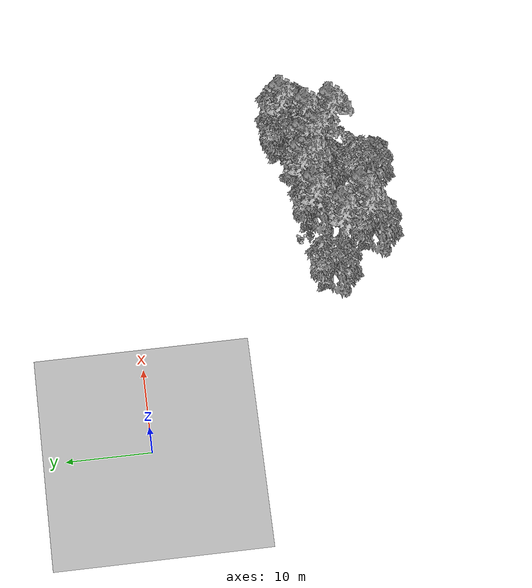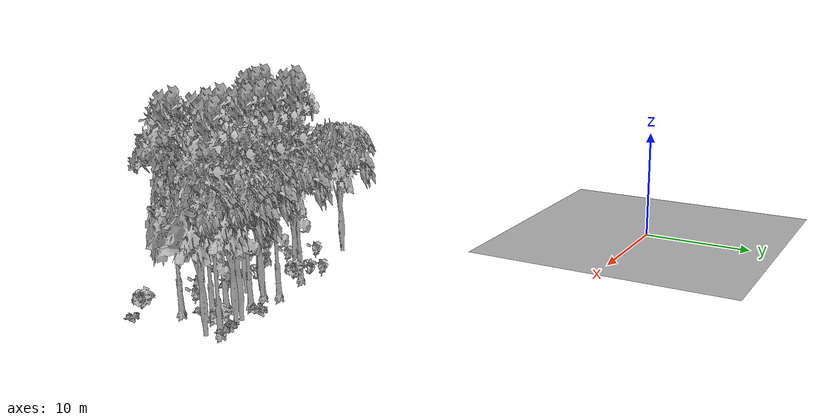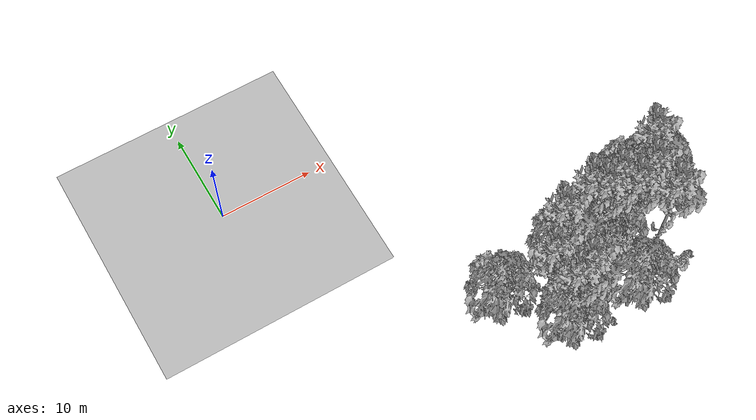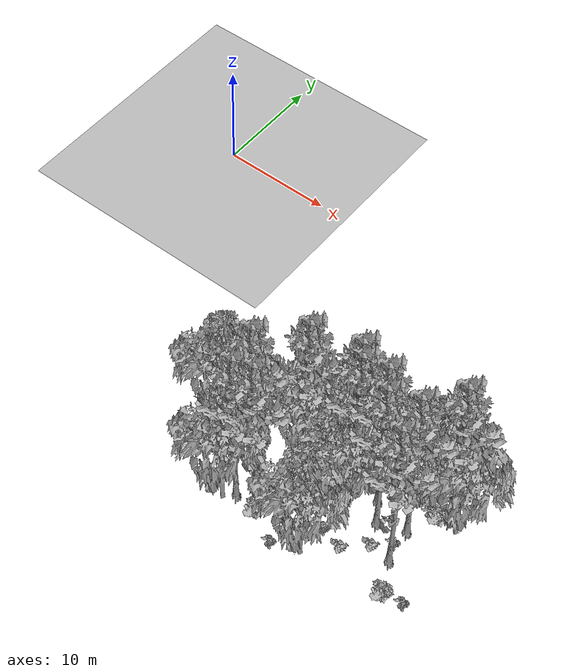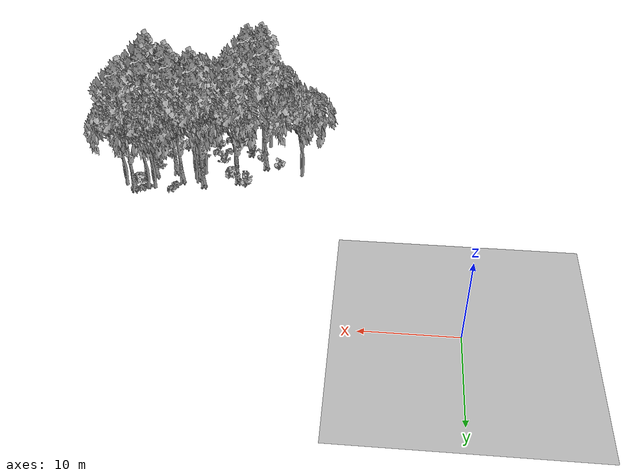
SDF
<sdf version="1.7">
 <world name="default">
  <model name="ground_plane">
   <static>1</static>
   <link name="link">
    <collision name="collision">
     <pose>-50 0 0 0 -0 0</pose>
     <geometry><plane><normal>0 0 1</normal><size>80 80</size></plane></geometry>
     <surface><contact><ode><min_depth>0.01</min_depth><max_vel>0</max_vel></ode></contact></surface>
    </collision>
    <visual name="grass">
     <cast_shadows>0</cast_shadows>
     <geometry>
      <mesh>
       <scale>0.46714285714285714 0.46714285714285714 0.1</scale>
       <uri>file://grass_plane/meshes/grass_plane.dae</uri>
      </mesh>
     </geometry>
    </visual>
   </link>
  </model>
  <model name="Tree 1">
   <static>1</static>
   <pose>25.15433106884627 -22.121792688263522 0 1.57079 -0 0</pose>
   <link name="link">
    <collision name="collision">
     <geometry><mesh><scale>3.5 5 3.5</scale><uri>model://tree_2/meshes/tree_2.obj</uri></mesh></geometry>
    </collision>
    <visual name="visual">
     <geometry><mesh><scale>3.5 5 3.5</scale><uri>model://tree_2/meshes/tree_2.obj</uri></mesh></geometry>
    </visual>
   </link>
  </model>
  <model name="Tree 19">
   <static>1</static>
   <pose>31.57622135617119 -21.32363302971755 0 1.57079 -0 0</pose>
   <link name="link">
    <collision name="collision">
     <geometry><mesh><scale>3.5 5 3.5</scale><uri>model://tree_9/meshes/tree_9.obj</uri></mesh></geometry>
    </collision>
    <visual name="visual">
     <geometry><mesh><scale>3.5 5 3.5</scale><uri>model://tree_9/meshes/tree_9.obj</uri></mesh></geometry>
    </visual>
   </link>
  </model>
  <model name="Tree 50">
   <static>1</static>
   <pose>25.119805464173673 -21.747628831073655 0 1.57079 -0 0</pose>
   <link name="link">
    <collision name="collision">
     <geometry><mesh><scale>3.5 5 3.5</scale><uri>model://tree_9/meshes/tree_9.obj</uri></mesh></geometry>
    </collision>
    <visual name="visual">
     <geometry><mesh><scale>3.5 5 3.5</scale><uri>model://tree_9/meshes/tree_9.obj</uri></mesh></geometry>
    </visual>
   </link>
  </model>
  <model name="Tree 78">
   <static>1</static>
   <pose>29.667019353163383 -21.769724168258982 0 1.57079 -0 0</pose>
   <link name="link">
    <collision name="collision">
     <geometry><mesh><scale>3.5 5 3.5</scale><uri>model://tree_9/meshes/tree_9.obj</uri></mesh></geometry>
    </collision>
    <visual name="visual">
     <geometry><mesh><scale>3.5 5 3.5</scale><uri>model://tree_9/meshes/tree_9.obj</uri></mesh></geometry>
    </visual>
   </link>
  </model>
  <model name="Tree 202">
   <static>1</static>
   <pose>17.6185657190763 -23.146371252627045 0 1.57079 -0 0</pose>
   <link name="link">
    <collision name="collision">
     <geometry><mesh><scale>3.5 5 3.5</scale><uri>model://tree_2/meshes/tree_2.obj</uri></mesh></geometry>
    </collision>
    <visual name="visual">
     <geometry><mesh><scale>3.5 5 3.5</scale><uri>model://tree_2/meshes/tree_2.obj</uri></mesh></geometry>
    </visual>
   </link>
  </model>
  <model name="Tree 309">
   <static>1</static>
   <pose>24.30790081478243 -27.128854217336375 0 1.57079 -0 0</pose>
   <link name="link">
    <collision name="collision">
     <geometry><mesh><scale>3.5 5 3.5</scale><uri>model://tree_9/meshes/tree_9.obj</uri></mesh></geometry>
    </collision>
    <visual name="visual">
     <geometry><mesh><scale>3.5 5 3.5</scale><uri>model://tree_9/meshes/tree_9.obj</uri></mesh></geometry>
    </visual>
   </link>
  </model>
  <model name="Tree 315">
   <static>1</static>
   <pose>22.788136232855635 -27.617628282420725 0 1.57079 -0 0</pose>
   <link name="link">
    <collision name="collision">
     <geometry><mesh><scale>3.5 5 3.5</scale><uri>model://tree_9/meshes/tree_9.obj</uri></mesh></geometry>
    </collision>
    <visual name="visual">
     <geometry><mesh><scale>3.5 5 3.5</scale><uri>model://tree_9/meshes/tree_9.obj</uri></mesh></geometry>
    </visual>
   </link>
  </model>
  <model name="Tree 352">
   <static>1</static>
   <pose>36.78802090127904 -19.372158699724935 0 1.57079 -0 0</pose>
   <link name="link">
    <collision name="collision">
     <geometry><mesh><scale>3.5 5 3.5</scale><uri>model://tree_9/meshes/tree_9.obj</uri></mesh></geometry>
    </collision>
    <visual name="visual">
     <geometry><mesh><scale>3.5 5 3.5</scale><uri>model://tree_9/meshes/tree_9.obj</uri></mesh></geometry>
    </visual>
   </link>
  </model>
  <model name="Tree 356">
   <static>1</static>
   <pose>37.63692072221011 -19.869730244622808 0 1.57079 -0 0</pose>
   <link name="link">
    <collision name="collision">
     <geometry><mesh><scale>3.5 5 3.5</scale><uri>model://tree_2/meshes/tree_2.obj</uri></mesh></geometry>
    </collision>
    <visual name="visual">
     <geometry><mesh><scale>3.5 5 3.5</scale><uri>model://tree_2/meshes/tree_2.obj</uri></mesh></geometry>
    </visual>
   </link>
  </model>
  <model name="Tree 361">
   <static>1</static>
   <pose>32.60873478687947 -22.911637658747537 0 1.57079 -0 0</pose>
   <link name="link">
    <collision name="collision">
     <geometry><mesh><scale>3.5 5 3.5</scale><uri>model://tree_9/meshes/tree_9.obj</uri></mesh></geometry>
    </collision>
    <visual name="visual">
     <geometry><mesh><scale>3.5 5 3.5</scale><uri>model://tree_9/meshes/tree_9.obj</uri></mesh></geometry>
    </visual>
   </link>
  </model>
  <model name="Tree 377">
   <static>1</static>
   <pose>35.00682366378817 -19.45254974841216 0 1.57079 -0 0</pose>
   <link name="link">
    <collision name="collision">
     <geometry><mesh><scale>3.5 5 3.5</scale><uri>model://tree_2/meshes/tree_2.obj</uri></mesh></geometry>
    </collision>
    <visual name="visual">
     <geometry><mesh><scale>3.5 5 3.5</scale><uri>model://tree_2/meshes/tree_2.obj</uri></mesh></geometry>
    </visual>
   </link>
  </model>
  <model name="Tree 405">
   <static>1</static>
   <pose>22.01245626165268 -28.431097696993596 0 1.57079 -0 0</pose>
   <link name="link">
    <collision name="collision">
     <geometry><mesh><scale>3.5 5 3.5</scale><uri>model://tree_2/meshes/tree_2.obj</uri></mesh></geometry>
    </collision>
    <visual name="visual">
     <geometry><mesh><scale>3.5 5 3.5</scale><uri>model://tree_2/meshes/tree_2.obj</uri></mesh></geometry>
    </visual>
   </link>
  </model>
  <model name="Tree 406">
   <static>1</static>
   <pose>28.93105081546682 -22.614852970560648 0 1.57079 -0 0</pose>
   <link name="link">
    <collision name="collision">
     <geometry><mesh><scale>3.5 5 3.5</scale><uri>model://tree_2/meshes/tree_2.obj</uri></mesh></geometry>
    </collision>
    <visual name="visual">
     <geometry><mesh><scale>3.5 5 3.5</scale><uri>model://tree_2/meshes/tree_2.obj</uri></mesh></geometry>
    </visual>
   </link>
  </model>
  <model name="Tree 419">
   <static>1</static>
   <pose>22.162764306087006 -24.66579900304005 0 1.57079 -0 0</pose>
   <link name="link">
    <collision name="collision">
     <geometry><mesh><scale>3.5 5 3.5</scale><uri>model://tree_9/meshes/tree_9.obj</uri></mesh></geometry>
    </collision>
    <visual name="visual">
     <geometry><mesh><scale>3.5 5 3.5</scale><uri>model://tree_9/meshes/tree_9.obj</uri></mesh></geometry>
    </visual>
   </link>
  </model>
  <model name="Tree 426">
   <static>1</static>
   <pose>34.28933614757631 -19.59842076832846 0 1.57079 -0 0</pose>
   <link name="link">
    <collision name="collision">
     <geometry><mesh><scale>3.5 5 3.5</scale><uri>model://tree_2/meshes/tree_2.obj</uri></mesh></geometry>
    </collision>
    <visual name="visual">
     <geometry><mesh><scale>3.5 5 3.5</scale><uri>model://tree_2/meshes/tree_2.obj</uri></mesh></geometry>
    </visual>
   </link>
  </model>
  <model name="Tree 432">
   <static>1</static>
   <pose>34.84116654038324 -22.077814399668565 0 1.57079 -0 0</pose>
   <link name="link">
    <collision name="collision">
     <geometry><mesh><scale>3.5 5 3.5</scale><uri>model://tree_9/meshes/tree_9.obj</uri></mesh></geometry>
    </collision>
    <visual name="visual">
     <geometry><mesh><scale>3.5 5 3.5</scale><uri>model://tree_9/meshes/tree_9.obj</uri></mesh></geometry>
    </visual>
   </link>
  </model>
  <model name="Tree 472">
   <static>1</static>
   <pose>29.550734960092342 -28.54523869502387 0 1.57079 -0 0</pose>
   <link name="link">
    <collision name="collision">
     <geometry><mesh><scale>3.5 5 3.5</scale><uri>model://tree_2/meshes/tree_2.obj</uri></mesh></geometry>
    </collision>
    <visual name="visual">
     <geometry><mesh><scale>3.5 5 3.5</scale><uri>model://tree_2/meshes/tree_2.obj</uri></mesh></geometry>
    </visual>
   </link>
  </model>
  <model name="Tree 547">
   <static>1</static>
   <pose>29.848208594778697 -21.62453468427234 0 1.57079 -0 0</pose>
   <link name="link">
    <collision name="collision">
     <geometry><mesh><scale>3.5 5 3.5</scale><uri>model://tree_2/meshes/tree_2.obj</uri></mesh></geometry>
    </collision>
    <visual name="visual">
     <geometry><mesh><scale>3.5 5 3.5</scale><uri>model://tree_2/meshes/tree_2.obj</uri></mesh></geometry>
    </visual>
   </link>
  </model>
  <model name="Tree 561">
   <static>1</static>
   <pose>29.862461277806574 -23.290935414687787 0 1.57079 -0 0</pose>
   <link name="link">
    <collision name="collision">
     <geometry><mesh><scale>3.5 5 3.5</scale><uri>model://tree_2/meshes/tree_2.obj</uri></mesh></geometry>
    </collision>
    <visual name="visual">
     <geometry><mesh><scale>3.5 5 3.5</scale><uri>model://tree_2/meshes/tree_2.obj</uri></mesh></geometry>
    </visual>
   </link>
  </model>
  <model name="Tree 597">
   <static>1</static>
   <pose>35.25030614659455 -24.96420193860751 0 1.57079 -0 0</pose>
   <link name="link">
    <collision name="collision">
     <geometry><mesh><scale>3.5 5 3.5</scale><uri>model://tree_9/meshes/tree_9.obj</uri></mesh></geometry>
    </collision>
    <visual name="visual">
     <geometry><mesh><scale>3.5 5 3.5</scale><uri>model://tree_9/meshes/tree_9.obj</uri></mesh></geometry>
    </visual>
   </link>
  </model>
  <model name="Tree 599">
   <static>1</static>
   <pose>28.96413450698607 -20.739951017294082 0 1.57079 -0 0</pose>
   <link name="link">
    <collision name="collision">
     <geometry><mesh><scale>3.5 5 3.5</scale><uri>model://tree_9/meshes/tree_9.obj</uri></mesh></geometry>
    </collision>
    <visual name="visual">
     <geometry><mesh><scale>3.5 5 3.5</scale><uri>model://tree_9/meshes/tree_9.obj</uri></mesh></geometry>
    </visual>
   </link>
  </model>
  <model name="Bush 27">
   <static>1</static>
   <pose>24.098547384231978 -21.63351143673396 0 1.57079 -0 0</pose>
   <link name="link">
    <collision name="collision">
     <geometry><mesh><scale>2 2 2</scale><uri>model://bush_4/meshes/bush_4.obj</uri></mesh></geometry>
     <surface><contact><collide_without_contact>false</collide_without_contact></contact></surface>
    </collision>
    <visual name="visual">
     <geometry><mesh><scale>2 2 2</scale><uri>model://bush_4/meshes/bush_4.obj</uri></mesh></geometry>
    </visual>
   </link>
  </model>
  <model name="Bush 44">
   <static>1</static>
   <pose>24.959239774797545 -28.27838011522222 0 1.57079 -0 0</pose>
   <link name="link">
    <collision name="collision">
     <geometry><mesh><scale>2 2 2</scale><uri>model://bush_1/meshes/bush_1.obj</uri></mesh></geometry>
     <surface><contact><collide_without_contact>false</collide_without_contact></contact></surface>
    </collision>
    <visual name="visual">
     <geometry><mesh><scale>2 2 2</scale><uri>model://bush_1/meshes/bush_1.obj</uri></mesh></geometry>
    </visual>
   </link>
  </model>
  <model name="Bush 79">
   <static>1</static>
   <pose>25.72087300759621 -22.060497128843018 0 1.57079 -0 0</pose>
   <link name="link">
    <collision name="collision">
     <geometry><mesh><scale>2 2 2</scale><uri>model://bush_1/meshes/bush_1.obj</uri></mesh></geometry>
     <surface><contact><collide_without_contact>false</collide_without_contact></contact></surface>
    </collision>
    <visual name="visual">
     <geometry><mesh><scale>2 2 2</scale><uri>model://bush_1/meshes/bush_1.obj</uri></mesh></geometry>
    </visual>
   </link>
  </model>
  <model name="Bush 137">
   <static>1</static>
   <pose>24.01012503966912 -26.820329151984204 0 1.57079 -0 0</pose>
   <link name="link">
    <collision name="collision">
     <geometry><mesh><scale>2 2 2</scale><uri>model://bush_4/meshes/bush_4.obj</uri></mesh></geometry>
     <surface><contact><collide_without_contact>false</collide_without_contact></contact></surface>
    </collision>
    <visual name="visual">
     <geometry><mesh><scale>2 2 2</scale><uri>model://bush_4/meshes/bush_4.obj</uri></mesh></geometry>
    </visual>
   </link>
  </model>
  <model name="Bush 145">
   <static>1</static>
   <pose>29.73505444759337 -25.850453810322644 0 1.57079 -0 0</pose>
   <link name="link">
    <collision name="collision">
     <geometry><mesh><scale>2 2 2</scale><uri>model://bush_2/meshes/bush_2.obj</uri></mesh></geometry>
     <surface><contact><collide_without_contact>false</collide_without_contact></contact></surface>
    </collision>
    <visual name="visual">
     <geometry><mesh><scale>2 2 2</scale><uri>model://bush_2/meshes/bush_2.obj</uri></mesh></geometry>
    </visual>
   </link>
  </model>
  <model name="Bush 166">
   <static>1</static>
   <pose>27.280498976330037 -29.274895455184485 0 1.57079 -0 0</pose>
   <link name="link">
    <collision name="collision">
     <geometry><mesh><scale>2 2 2</scale><uri>model://bush_2/meshes/bush_2.obj</uri></mesh></geometry>
     <surface><contact><collide_without_contact>false</collide_without_contact></contact></surface>
    </collision>
    <visual name="visual">
     <geometry><mesh><scale>2 2 2</scale><uri>model://bush_2/meshes/bush_2.obj</uri></mesh></geometry>
    </visual>
   </link>
  </model>
  <model name="Bush 183">
   <static>1</static>
   <pose>22.751132655914162 -25.336067164214036 0 1.57079 -0 0</pose>
   <link name="link">
    <collision name="collision">
     <geometry><mesh><scale>2 2 2</scale><uri>model://bush_0/meshes/bush_0.obj</uri></mesh></geometry>
     <surface><contact><collide_without_contact>false</collide_without_contact></contact></surface>
    </collision>
    <visual name="visual">
     <geometry><mesh><scale>2 2 2</scale><uri>model://bush_0/meshes/bush_0.obj</uri></mesh></geometry>
    </visual>
   </link>
  </model>
  <model name="Bush 201">
   <static>1</static>
   <pose>20.56946627616687 -23.932164599135817 0 1.57079 -0 0</pose>
   <link name="link">
    <collision name="collision">
     <geometry><mesh><scale>2 2 2</scale><uri>model://bush_0/meshes/bush_0.obj</uri></mesh></geometry>
     <surface><contact><collide_without_contact>false</collide_without_contact></contact></surface>
    </collision>
    <visual name="visual">
     <geometry><mesh><scale>2 2 2</scale><uri>model://bush_0/meshes/bush_0.obj</uri></mesh></geometry>
    </visual>
   </link>
  </model>
  <model name="Bush 216">
   <static>1</static>
   <pose>37.99265911761972 -27.223656802338976 0 1.57079 -0 0</pose>
   <link name="link">
    <collision name="collision">
     <geometry><mesh><scale>2 2 2</scale><uri>model://bush_2/meshes/bush_2.obj</uri></mesh></geometry>
     <surface><contact><collide_without_contact>false</collide_without_contact></contact></surface>
    </collision>
    <visual name="visual">
     <geometry><mesh><scale>2 2 2</scale><uri>model://bush_2/meshes/bush_2.obj</uri></mesh></geometry>
    </visual>
   </link>
  </model>
  <model name="Bush 218">
   <static>1</static>
   <pose>36.15508130132116 -20.13766753895017 0 1.57079 -0 0</pose>
   <link name="link">
    <collision name="collision">
     <geometry><mesh><scale>2 2 2</scale><uri>model://bush_1/meshes/bush_1.obj</uri></mesh></geometry>
     <surface><contact><collide_without_contact>false</collide_without_contact></contact></surface>
    </collision>
    <visual name="visual">
     <geometry><mesh><scale>2 2 2</scale><uri>model://bush_1/meshes/bush_1.obj</uri></mesh></geometry>
    </visual>
   </link>
  </model>
  <model name="Bush 307">
   <static>1</static>
   <pose>35.22342592053383 -19.745010913644208 0 1.57079 -0 0</pose>
   <link name="link">
    <collision name="collision">
     <geometry><mesh><scale>2 2 2</scale><uri>model://bush_2/meshes/bush_2.obj</uri></mesh></geometry>
     <surface><contact><collide_without_contact>false</collide_without_contact></contact></surface>
    </collision>
    <visual name="visual">
     <geometry><mesh><scale>2 2 2</scale><uri>model://bush_2/meshes/bush_2.obj</uri></mesh></geometry>
    </visual>
   </link>
  </model>
  <model name="Bush 336">
   <static>1</static>
   <pose>36.64209360234685 -19.262040586639657 0 1.57079 -0 0</pose>
   <link name="link">
    <collision name="collision">
     <geometry><mesh><scale>2 2 2</scale><uri>model://bush_2/meshes/bush_2.obj</uri></mesh></geometry>
     <surface><contact><collide_without_contact>false</collide_without_contact></contact></surface>
    </collision>
    <visual name="visual">
     <geometry><mesh><scale>2 2 2</scale><uri>model://bush_2/meshes/bush_2.obj</uri></mesh></geometry>
    </visual>
   </link>
  </model>
  <model name="Bush 338">
   <static>1</static>
   <pose>36.48812467549983 -27.907275590944103 0 1.57079 -0 0</pose>
   <link name="link">
    <collision name="collision">
     <geometry><mesh><scale>2 2 2</scale><uri>model://bush_1/meshes/bush_1.obj</uri></mesh></geometry>
     <surface><contact><collide_without_contact>false</collide_without_contact></contact></surface>
    </collision>
    <visual name="visual">
     <geometry><mesh><scale>2 2 2</scale><uri>model://bush_1/meshes/bush_1.obj</uri></mesh></geometry>
    </visual>
   </link>
  </model>
  <model name="Bush 383">
   <static>1</static>
   <pose>28.171659928938368 -27.28585637487802 0 1.57079 -0 0</pose>
   <link name="link">
    <collision name="collision">
     <geometry><mesh><scale>2 2 2</scale><uri>model://bush_0/meshes/bush_0.obj</uri></mesh></geometry>
     <surface><contact><collide_without_contact>false</collide_without_contact></contact></surface>
    </collision>
    <visual name="visual">
     <geometry><mesh><scale>2 2 2</scale><uri>model://bush_0/meshes/bush_0.obj</uri></mesh></geometry>
    </visual>
   </link>
  </model>
  <model name="Bush 430">
   <static>1</static>
   <pose>26.910023584575598 -26.991334582627662 0 1.57079 -0 0</pose>
   <link name="link">
    <collision name="collision">
     <geometry><mesh><scale>2 2 2</scale><uri>model://bush_2/meshes/bush_2.obj</uri></mesh></geometry>
     <surface><contact><collide_without_contact>false</collide_without_contact></contact></surface>
    </collision>
    <visual name="visual">
     <geometry><mesh><scale>2 2 2</scale><uri>model://bush_2/meshes/bush_2.obj</uri></mesh></geometry>
    </visual>
   </link>
  </model>
  <model name="Bush 447">
   <static>1</static>
   <pose>33.69193206510985 -25.099146271898007 0 1.57079 -0 0</pose>
   <link name="link">
    <collision name="collision">
     <geometry><mesh><scale>2 2 2</scale><uri>model://bush_0/meshes/bush_0.obj</uri></mesh></geometry>
     <surface><contact><collide_without_contact>false</collide_without_contact></contact></surface>
    </collision>
    <visual name="visual">
     <geometry><mesh><scale>2 2 2</scale><uri>model://bush_0/meshes/bush_0.obj</uri></mesh></geometry>
    </visual>
   </link>
  </model>
  <model name="Bush 486">
   <static>1</static>
   <pose>31.957933646914995 -26.67061553299004 0 1.57079 -0 0</pose>
   <link name="link">
    <collision name="collision">
     <geometry><mesh><scale>2 2 2</scale><uri>model://bush_0/meshes/bush_0.obj</uri></mesh></geometry>
     <surface><contact><collide_without_contact>false</collide_without_contact></contact></surface>
    </collision>
    <visual name="visual">
     <geometry><mesh><scale>2 2 2</scale><uri>model://bush_0/meshes/bush_0.obj</uri></mesh></geometry>
    </visual>
   </link>
  </model>
  <model name="Bush 497">
   <static>1</static>
   <pose>24.036198373753578 -20.41212531578733 0 1.57079 -0 0</pose>
   <link name="link">
    <collision name="collision">
     <geometry><mesh><scale>2 2 2</scale><uri>model://bush_0/meshes/bush_0.obj</uri></mesh></geometry>
     <surface><contact><collide_without_contact>false</collide_without_contact></contact></surface>
    </collision>
    <visual name="visual">
     <geometry><mesh><scale>2 2 2</scale><uri>model://bush_0/meshes/bush_0.obj</uri></mesh></geometry>
    </visual>
   </link>
  </model>
  <model name="Bush 564">
   <static>1</static>
   <pose>28.400018370593102 -26.728179629905124 0 1.57079 -0 0</pose>
   <link name="link">
    <collision name="collision">
     <geometry><mesh><scale>2 2 2</scale><uri>model://bush_2/meshes/bush_2.obj</uri></mesh></geometry>
     <surface><contact><collide_without_contact>false</collide_without_contact></contact></surface>
    </collision>
    <visual name="visual">
     <geometry><mesh><scale>2 2 2</scale><uri>model://bush_2/meshes/bush_2.obj</uri></mesh></geometry>
    </visual>
   </link>
  </model>
  <model name="Bush 600">
   <static>1</static>
   <pose>27.1814827553317 -24.771482274587857 0 1.57079 -0 0</pose>
   <link name="link">
    <collision name="collision">
     <geometry><mesh><scale>2 2 2</scale><uri>model://bush_4/meshes/bush_4.obj</uri></mesh></geometry>
     <surface><contact><collide_without_contact>false</collide_without_contact></contact></surface>
    </collision>
    <visual name="visual">
     <geometry><mesh><scale>2 2 2</scale><uri>model://bush_4/meshes/bush_4.obj</uri></mesh></geometry>
    </visual>
   </link>
  </model>
  <model name="Bush 605">
   <static>1</static>
   <pose>32.456079440034316 -19.47302588065859 0 1.57079 -0 0</pose>
   <link name="link">
    <collision name="collision">
     <geometry><mesh><scale>2 2 2</scale><uri>model://bush_2/meshes/bush_2.obj</uri></mesh></geometry>
     <surface><contact><collide_without_contact>false</collide_without_contact></contact></surface>
    </collision>
    <visual name="visual">
     <geometry><mesh><scale>2 2 2</scale><uri>model://bush_2/meshes/bush_2.obj</uri></mesh></geometry>
    </visual>
   </link>
  </model>
  <model name="Bush 621">
   <static>1</static>
   <pose>34.61715070599729 -23.581297891877668 0 1.57079 -0 0</pose>
   <link name="link">
    <collision name="collision">
     <geometry><mesh><scale>2 2 2</scale><uri>model://bush_2/meshes/bush_2.obj</uri></mesh></geometry>
     <surface><contact><collide_without_contact>false</collide_without_contact></contact></surface>
    </collision>
    <visual name="visual">
     <geometry><mesh><scale>2 2 2</scale><uri>model://bush_2/meshes/bush_2.obj</uri></mesh></geometry>
    </visual>
   </link>
  </model>
  <model name="Bush 628">
   <static>1</static>
   <pose>35.781859805287056 -19.394386187021766 0 1.57079 -0 0</pose>
   <link name="link">
    <collision name="collision">
     <geometry><mesh><scale>2 2 2</scale><uri>model://bush_2/meshes/bush_2.obj</uri></mesh></geometry>
     <surface><contact><collide_without_contact>false</collide_without_contact></contact></surface>
    </collision>
    <visual name="visual">
     <geometry><mesh><scale>2 2 2</scale><uri>model://bush_2/meshes/bush_2.obj</uri></mesh></geometry>
    </visual>
   </link>
  </model>
  <model name="Bush 630">
   <static>1</static>
   <pose>32.07859621515226 -20.267299256562985 0 1.57079 -0 0</pose>
   <link name="link">
    <collision name="collision">
     <geometry><mesh><scale>2 2 2</scale><uri>model://bush_2/meshes/bush_2.obj</uri></mesh></geometry>
     <surface><contact><collide_without_contact>false</collide_without_contact></contact></surface>
    </collision>
    <visual name="visual">
     <geometry><mesh><scale>2 2 2</scale><uri>model://bush_2/meshes/bush_2.obj</uri></mesh></geometry>
    </visual>
   </link>
  </model>
 </world>
</sdf>
